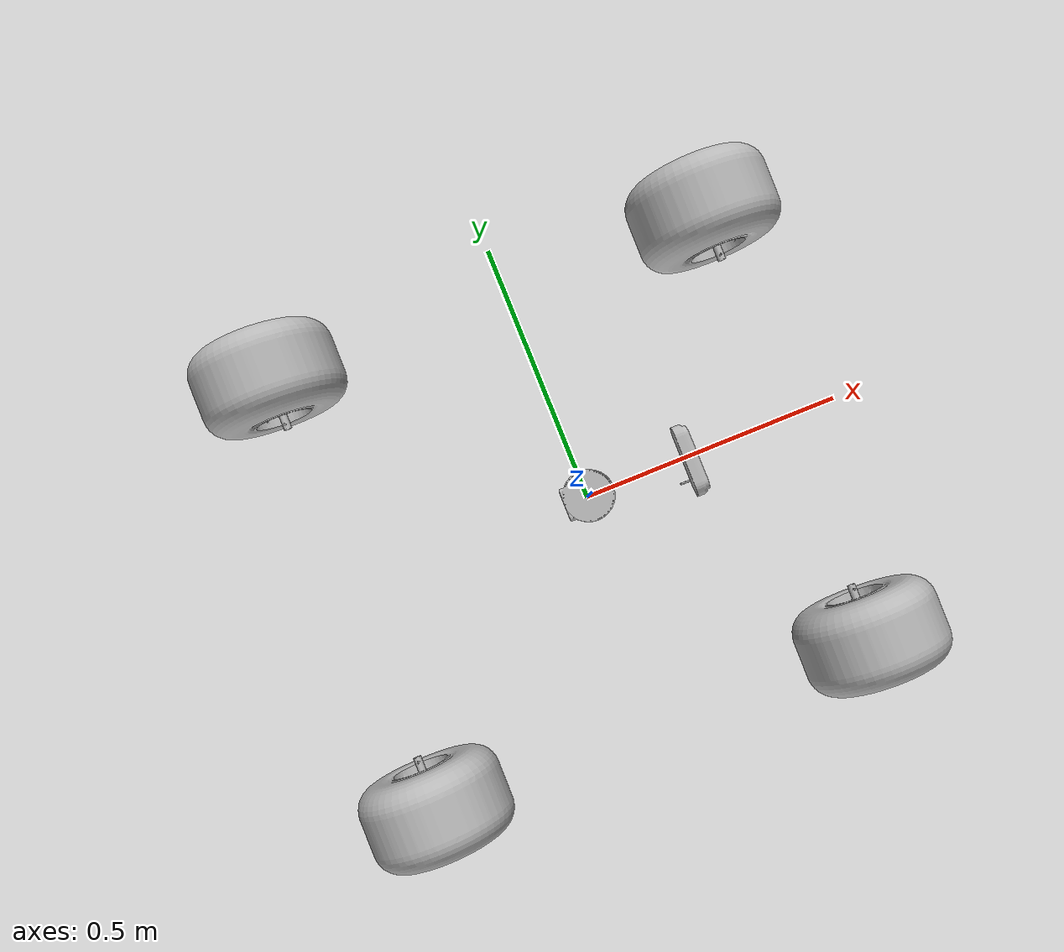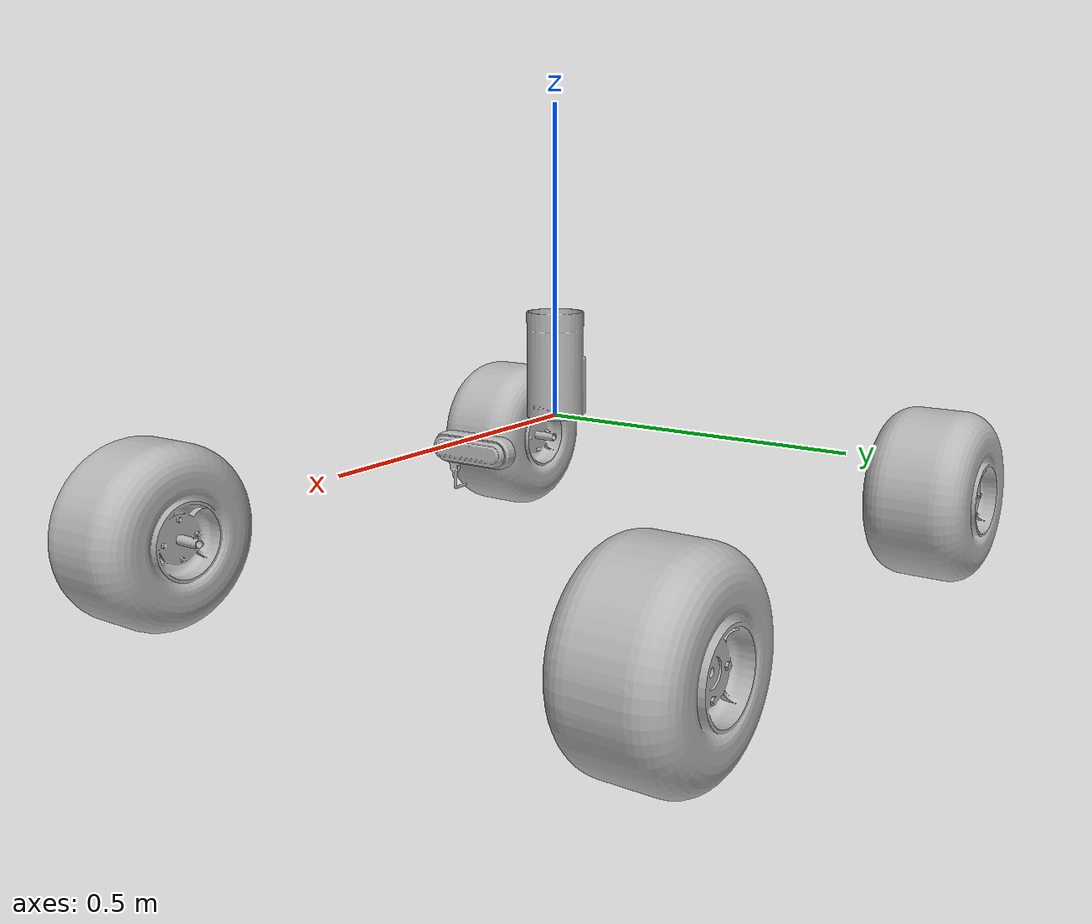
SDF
<sdf version='1.7'>
  <model name='r24_description'>
    <link name='base_link'>
      <inertial>
        <pose>-0.06309 -0.044994 0.008408 0 -0 0</pose>
        <mass>24.9075</mass>
        <inertia>
          <ixx>2.65334</ixx>
          <ixy>0.0787514</ixy>
          <ixz>0.0200689</ixz>
          <iyy>4.8009</iyy>
          <iyz>-0.0858497</iyz>
          <izz>3.23989</izz>
        </inertia>
      </inertial>
      <collision name='base_link_collision'>
        <pose>0 0 0 0 -0 0</pose>
        <geometry>
          <mesh>
            <scale>1 1 1</scale>
            <uri>model://meshes/base_link.STL</uri>
          </mesh>
        </geometry>
      </collision>
      <collision name='base_link_fixed_joint_lump__camera_link_collision_1'>
        <pose>0.22359 -0.00735 -0.019626 0 1.5708 0</pose>
        <geometry>
          <mesh>
            <scale>1 1 1</scale>
            <uri>model://meshes/stereocam_link.STL</uri>
          </mesh>
        </geometry>
        <surface>
          <contact>
            <ode/>
          </contact>
          <friction>
            <ode/>
          </friction>
        </surface>
      </collision>
      <visual name='base_link_visual'>
        <pose>0 0 0 0 -0 0</pose>
        <geometry>
          <mesh>
            <scale>1 1 1</scale>
            <uri>model://meshes/base_link.STL</uri>
          </mesh>
        </geometry>
      </visual>
      <visual name='base_link_fixed_joint_lump__camera_link_visual_1'>
        <pose>0.22359 -0.00735 -0.019626 0 1.5708 0</pose>
        <geometry>
          <mesh>
            <scale>1 1 1</scale>
            <uri>model://meshes/stereocam_link.STL</uri>
          </mesh>
        </geometry>
      </visual>
      <sensor name='depth_camera' type='depth'>
        <visualize>1</visualize>
        <update_rate>30</update_rate>
        <camera name='camera'>
          <horizontal_fov>1.0472</horizontal_fov>
          <image>
            <width>640</width>
            <height>480</height>
            <format>R8G8B8</format>
          </image>
          <clip>
            <near>0.05</near>
            <far>3</far>
          </clip>
        </camera>
        <plugin name='depth_camera_controller' filename='libgazebo_ros_camera.so'>
          <baseline>0.2</baseline>
          <alwaysOn>1</alwaysOn>
          <updateRate>0.0</updateRate>
          <frame_name>camera_depth_frame</frame_name>
          <pointCloudCutoff>0.5</pointCloudCutoff>
          <pointCloudCutoffMax>3.0</pointCloudCutoffMax>
          <distortionK1>0</distortionK1>
          <distortionK2>0</distortionK2>
          <distortionK3>0</distortionK3>
          <distortionT1>0</distortionT1>
          <distortionT2>0</distortionT2>
          <CxPrime>0</CxPrime>
          <Cx>0</Cx>
          <Cy>0</Cy>
          <focalLength>0</focalLength>
          <hackBaseline>0</hackBaseline>
        </plugin>
        <pose>0.22359 -0.00735 -0.019626 3.14159 1.57079 3.14159</pose>
      </sensor>
    </link>
    <joint name='back_left_joint' type='revolute'>
      <pose relative_to='base_link'>-0.50935 0.35761 -0.17138 1.5708 -0 -1.5796</pose>
      <parent>base_link</parent>
      <child>back_left_link</child>
      <axis>
        <xyz>-1 0 0</xyz>
        <limit>
          <lower>-1e+16</lower>
          <upper>1e+16</upper>
        </limit>
        <dynamics>
          <spring_reference>0</spring_reference>
          <spring_stiffness>0</spring_stiffness>
        </dynamics>
      </axis>
    </joint>
    <link name='back_left_link'>
      <pose relative_to='back_left_joint'>0 0 0 0 -0 0</pose>
      <inertial>
        <pose>0.36223 0.1262 -0.448119 0 -0 0</pose>
        <mass>24.7847</mass>
        <inertia>
          <ixx>3.23005</ixx>
          <ixy>-0.0866844</ixy>
          <ixz>-0.0241798</ixz>
          <iyy>4.79165</iyy>
          <iyz>-0.0792205</iyz>
          <izz>2.65325</izz>
        </inertia>
      </inertial>
      <collision name='back_left_link_collision'>
        <pose>0 0 0 0 -0 0</pose>
        <geometry>
          <mesh>
            <scale>1 1 1</scale>
            <uri>model://meshes/back_left_link.STL</uri>
          </mesh>
        </geometry>
      </collision>
      <visual name='back_left_link_visual'>
        <pose>0 0 0 0 -0 0</pose>
        <geometry>
          <mesh>
            <scale>1 1 1</scale>
            <uri>model://meshes/back_left_link.STL</uri>
          </mesh>
        </geometry>
      </visual>
    </link>
    <joint name='back_right_joint' type='revolute'>
      <pose relative_to='base_link'>-0.51561 -0.35947 -0.17138 1.5708 -0 1.562</pose>
      <parent>base_link</parent>
      <child>back_right_link</child>
      <axis>
        <xyz>1 0 0</xyz>
        <limit>
          <lower>-1e+16</lower>
          <upper>1e+16</upper>
        </limit>
        <dynamics>
          <spring_reference>0</spring_reference>
          <spring_stiffness>0</spring_stiffness>
        </dynamics>
      </axis>
    </joint>
    <link name='back_right_link'>
      <pose relative_to='back_right_joint'>0 0 0 0 -0 0</pose>
      <inertial>
        <pose>0.354853 0.1262 0.448081 0 -0 0</pose>
        <mass>24.7847</mass>
        <inertia>
          <ixx>3.23005</ixx>
          <ixy>0.0866804</ixy>
          <ixz>-0.0241506</ixz>
          <iyy>4.79165</iyy>
          <iyz>0.0792249</iyz>
          <izz>2.65325</izz>
        </inertia>
      </inertial>
      <collision name='back_right_link_collision'>
        <pose>0 0 0 0 -0 0</pose>
        <geometry>
          <mesh>
            <scale>1 1 1</scale>
            <uri>model://meshes/back_right_link.STL</uri>
          </mesh>
        </geometry>
      </collision>
      <visual name='back_right_link_visual'>
        <pose>0 0 0 0 -0 0</pose>
        <geometry>
          <mesh>
            <scale>1 1 1</scale>
            <uri>model://meshes/back_right_link.STL</uri>
          </mesh>
        </geometry>
      </visual>
    </link>
    <joint name='front_left_joint' type='revolute'>
      <pose relative_to='base_link'>0.43888 0.3467 -0.17138 1.5708 -0 -1.5796</pose>
      <parent>base_link</parent>
      <child>front_left_link</child>
      <axis>
        <xyz>-1 0 0</xyz>
        <limit>
          <lower>-1e+16</lower>
          <upper>1e+16</upper>
        </limit>
        <dynamics>
          <spring_reference>0</spring_reference>
          <spring_stiffness>0</spring_stiffness>
        </dynamics>
      </axis>
    </joint>
    <link name='front_left_link'>
      <pose relative_to='front_left_joint'>0 0 0 0 -0 0</pose>
      <inertial>
        <pose>0.359649 0.1262 0.500186 0 -0 0</pose>
        <mass>24.7847</mass>
        <inertia>
          <ixx>3.23005</ixx>
          <ixy>-0.0866804</ixy>
          <ixz>-0.0241506</ixz>
          <iyy>4.79165</iyy>
          <iyz>-0.0792249</iyz>
          <izz>2.65325</izz>
        </inertia>
      </inertial>
      <collision name='front_left_link_collision'>
        <pose>0 0 0 0 -0 0</pose>
        <geometry>
          <mesh>
            <scale>1 1 1</scale>
            <uri>model://meshes/front_left_link.STL</uri>
          </mesh>
        </geometry>
      </collision>
      <visual name='front_left_link_visual'>
        <pose>0 0 0 0 -0 0</pose>
        <geometry>
          <mesh>
            <scale>1 1 1</scale>
            <uri>model://meshes/front_left_link.STL</uri>
          </mesh>
        </geometry>
      </visual>
    </link>
    <joint name='front_right_joint' type='revolute'>
      <pose relative_to='base_link'>0.43366 -0.36512 -0.17138 1.5708 -0 1.562</pose>
      <parent>base_link</parent>
      <child>front_right_link</child>
      <axis>
        <xyz>1 0 0</xyz>
        <limit>
          <lower>-1e+16</lower>
          <upper>1e+16</upper>
        </limit>
        <dynamics>
          <spring_reference>0</spring_reference>
          <spring_stiffness>0</spring_stiffness>
        </dynamics>
      </axis>
    </joint>
    <link name='front_right_link'>
      <pose relative_to='front_right_joint'>0 0 0 0 -0 0</pose>
      <inertial>
        <pose>0.35216 0.1262 -0.501222 0 -0 0</pose>
        <mass>24.7847</mass>
        <inertia>
          <ixx>3.23005</ixx>
          <ixy>0.0866844</ixy>
          <ixz>-0.0241798</ixz>
          <iyy>4.79165</iyy>
          <iyz>0.0792205</iyz>
          <izz>2.65325</izz>
        </inertia>
      </inertial>
      <collision name='front_right_link_collision'>
        <pose>0 0 0 0 -0 0</pose>
        <geometry>
          <mesh>
            <scale>1 1 1</scale>
            <uri>model://meshes/front_right_link.STL</uri>
          </mesh>
        </geometry>
      </collision>
      <visual name='front_right_link_visual'>
        <pose>0 0 0 0 -0 0</pose>
        <geometry>
          <mesh>
            <scale>1 1 1</scale>
            <uri>model://meshes/front_right_link.STL</uri>
          </mesh>
        </geometry>
      </visual>
    </link>
  </model>
</sdf>
